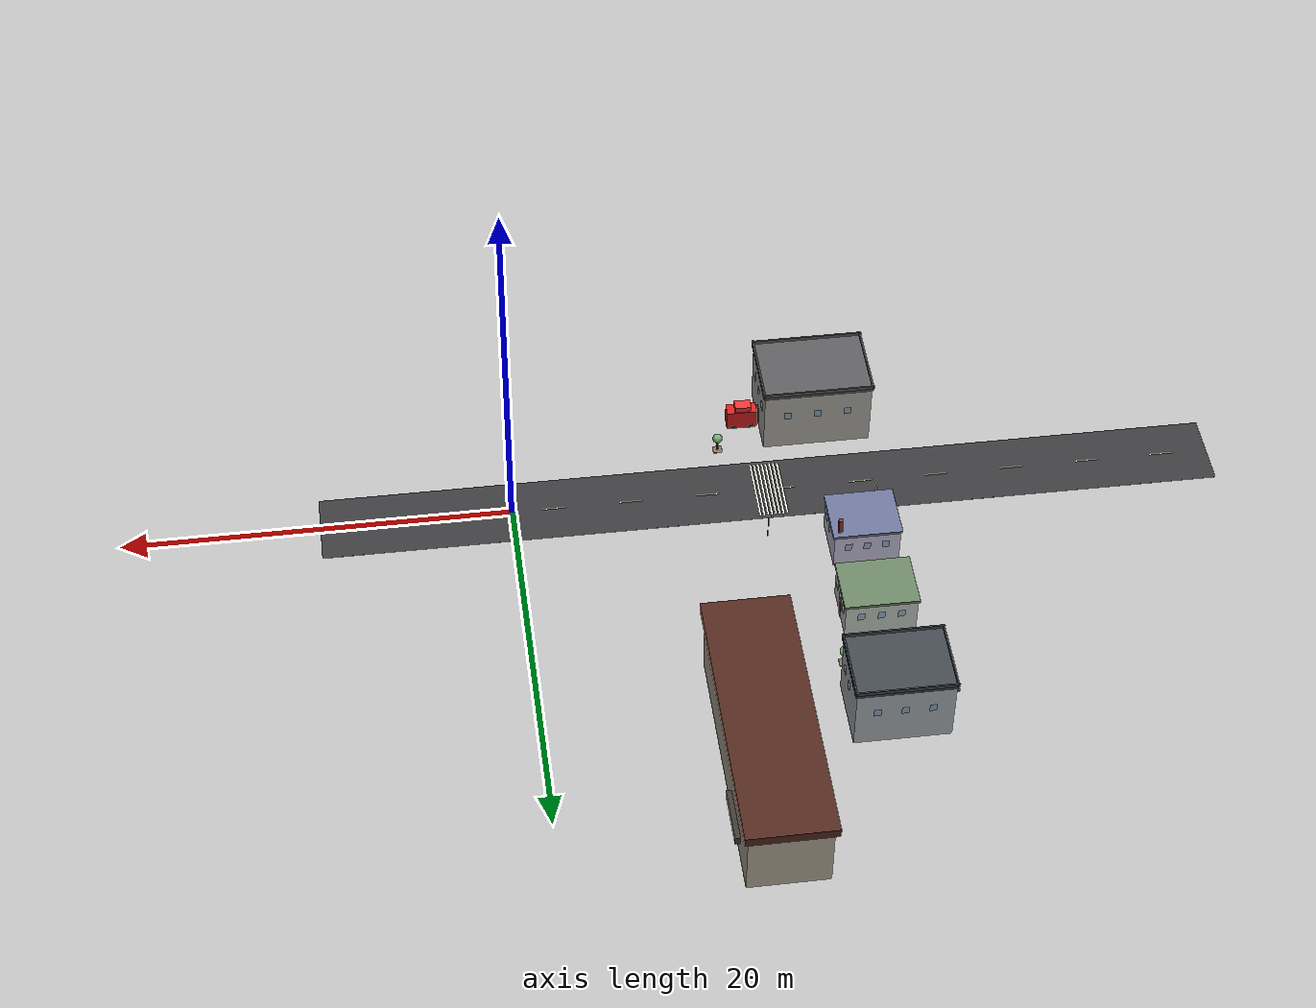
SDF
<sdf version="1.10">
 <world name="city">
  <model name="house_5">
   <static>true</static>
   <pose>-17.4449203491211 4.17096748352051 0 0 0 0</pose>
   <link name="link">
    <collision name="body_col">
     <pose>0 0 0.98 0 0 0</pose>
     <geometry><box><size>3.36 2.8 1.96</size></box></geometry>
    </collision>
    <visual name="body_vis">
     <pose>0 0 0.98 0 0 0</pose>
     <geometry><box><size>3.36 2.8 1.96</size></box></geometry>
     <material>
      <ambient>0.800000012 0.779999971 0.879999995 1</ambient>
      <diffuse>0.800000012 0.779999971 0.879999995 1</diffuse>
      <specular>0.0799999982 0.0799999982 0.0799999982 1</specular>
     </material>
    </visual>
    <collision name="roof_col">
     <pose>0 0 2.03 0 0 0</pose>
     <geometry><box><size>3.52 2.96 0.14</size></box></geometry>
    </collision>
    <visual name="roof_vis">
     <pose>0 0 2.03 0 0 0</pose>
     <geometry><box><size>3.52 2.96 0.14</size></box></geometry>
     <material>
      <ambient>0.419999987 0.460000008 0.600000024 1</ambient>
      <diffuse>0.419999987 0.460000008 0.600000024 1</diffuse>
      <specular>0.0799999982 0.0799999982 0.0799999982 1</specular>
     </material>
    </visual>
    <visual name="door_vis">
     <pose>0 -1.416 0.48 0 0 0</pose>
     <geometry><box><size>0.52 0.04 0.96</size></box></geometry>
     <material>
      <ambient>0.319999993 0.219999999 0.159999996 1</ambient>
      <diffuse>0.319999993 0.219999999 0.159999996 1</diffuse>
      <specular>0.0799999982 0.0799999982 0.0799999982 1</specular>
     </material>
    </visual>
    <visual name="win_south_0">
     <pose>-0.9408 -1.412 1.2152 0 0 0</pose>
     <geometry><box><size>0.34 0.032 0.4</size></box></geometry>
     <material>
      <ambient>0.550000012 0.720000029 0.879999995 0.550000012</ambient>
      <diffuse>0.550000012 0.720000029 0.879999995 0.550000012</diffuse>
      <specular>0.0799999982 0.0799999982 0.0799999982 1</specular>
      <transparency>0.35</transparency>
     </material>
    </visual>
    <visual name="win_south_1">
     <pose>0 -1.412 1.2152 0 0 0</pose>
     <geometry><box><size>0.34 0.032 0.4</size></box></geometry>
     <material>
      <ambient>0.550000012 0.720000029 0.879999995 0.550000012</ambient>
      <diffuse>0.550000012 0.720000029 0.879999995 0.550000012</diffuse>
      <specular>0.0799999982 0.0799999982 0.0799999982 1</specular>
      <transparency>0.35</transparency>
     </material>
    </visual>
    <visual name="win_south_2">
     <pose>0.9408 -1.412 1.2152 0 0 0</pose>
     <geometry><box><size>0.34 0.032 0.4</size></box></geometry>
     <material>
      <ambient>0.550000012 0.720000029 0.879999995 0.550000012</ambient>
      <diffuse>0.550000012 0.720000029 0.879999995 0.550000012</diffuse>
      <specular>0.0799999982 0.0799999982 0.0799999982 1</specular>
      <transparency>0.35</transparency>
     </material>
    </visual>
    <visual name="win_west_0">
     <pose>-1.692 -0.784 1.2152 0 0 0</pose>
     <geometry><box><size>0.032 0.34 0.4</size></box></geometry>
     <material>
      <ambient>0.550000012 0.720000029 0.879999995 0.550000012</ambient>
      <diffuse>0.550000012 0.720000029 0.879999995 0.550000012</diffuse>
      <specular>0.0799999982 0.0799999982 0.0799999982 1</specular>
      <transparency>0.35</transparency>
     </material>
    </visual>
    <visual name="win_west_1">
     <pose>-1.692 0 1.2152 0 0 0</pose>
     <geometry><box><size>0.032 0.34 0.4</size></box></geometry>
     <material>
      <ambient>0.550000012 0.720000029 0.879999995 0.550000012</ambient>
      <diffuse>0.550000012 0.720000029 0.879999995 0.550000012</diffuse>
      <specular>0.0799999982 0.0799999982 0.0799999982 1</specular>
      <transparency>0.35</transparency>
     </material>
    </visual>
    <visual name="win_east_0">
     <pose>1.692 -0.784 1.2152 0 0 0</pose>
     <geometry><box><size>0.032 0.34 0.4</size></box></geometry>
     <material>
      <ambient>0.550000012 0.720000029 0.879999995 0.550000012</ambient>
      <diffuse>0.550000012 0.720000029 0.879999995 0.550000012</diffuse>
      <specular>0.0799999982 0.0799999982 0.0799999982 1</specular>
      <transparency>0.35</transparency>
     </material>
    </visual>
    <visual name="win_east_1">
     <pose>1.692 0 1.2152 0 0 0</pose>
     <geometry><box><size>0.032 0.34 0.4</size></box></geometry>
     <material>
      <ambient>0.550000012 0.720000029 0.879999995 0.550000012</ambient>
      <diffuse>0.550000012 0.720000029 0.879999995 0.550000012</diffuse>
      <specular>0.0799999982 0.0799999982 0.0799999982 1</specular>
      <transparency>0.35</transparency>
     </material>
    </visual>
    <visual name="win_north_0">
     <pose>-0.9408 1.412 1.2152 0 0 0</pose>
     <geometry><box><size>0.34 0.032 0.4</size></box></geometry>
     <material>
      <ambient>0.550000012 0.720000029 0.879999995 0.550000012</ambient>
      <diffuse>0.550000012 0.720000029 0.879999995 0.550000012</diffuse>
      <specular>0.0799999982 0.0799999982 0.0799999982 1</specular>
      <transparency>0.35</transparency>
     </material>
    </visual>
    <visual name="win_north_1">
     <pose>0 1.412 1.2152 0 0 0</pose>
     <geometry><box><size>0.34 0.032 0.4</size></box></geometry>
     <material>
      <ambient>0.550000012 0.720000029 0.879999995 0.550000012</ambient>
      <diffuse>0.550000012 0.720000029 0.879999995 0.550000012</diffuse>
      <specular>0.0799999982 0.0799999982 0.0799999982 1</specular>
      <transparency>0.35</transparency>
     </material>
    </visual>
    <visual name="win_north_2">
     <pose>0.9408 1.412 1.2152 0 0 0</pose>
     <geometry><box><size>0.34 0.032 0.4</size></box></geometry>
     <material>
      <ambient>0.550000012 0.720000029 0.879999995 0.550000012</ambient>
      <diffuse>0.550000012 0.720000029 0.879999995 0.550000012</diffuse>
      <specular>0.0799999982 0.0799999982 0.0799999982 1</specular>
      <transparency>0.35</transparency>
     </material>
    </visual>
    <collision name="porch_col">
     <pose>0 -1.8 0.072 0 0 0</pose>
     <geometry><box><size>0.88 0.72 0.144</size></box></geometry>
    </collision>
    <visual name="porch_vis">
     <pose>0 -1.8 0.072 0 0 0</pose>
     <geometry><box><size>0.88 0.72 0.144</size></box></geometry>
     <material>
      <ambient>0.769999981 0.75999999 0.699999988 1</ambient>
      <diffuse>0.769999981 0.75999999 0.699999988 1</diffuse>
      <specular>0.0799999982 0.0799999982 0.0799999982 1</specular>
     </material>
    </visual>
    <visual name="chimney">
     <pose>1.36 1.08 2.44 0 0 0</pose>
     <geometry><box><size>0.2 0.2 0.96</size></box></geometry>
     <material>
      <ambient>0.550000012 0.219999999 0.180000007 1</ambient>
      <diffuse>0.550000012 0.219999999 0.180000007 1</diffuse>
      <specular>0.0799999982 0.0799999982 0.0799999982 1</specular>
     </material>
    </visual>
    <inertial>
     <mass>1</mass>
     <inertia><ixx>1</ixx><ixy>0</ixy><ixz>0</ixz><iyy>1</iyy><iyz>0</iyz><izz>1</izz></inertia>
    </inertial>
   </link>
  </model>
  <model name="clinic_annex">
   <static>true</static>
   <pose>-17.331510925293 8.8 0 0 0 0</pose>
   <link name="link">
    <collision name="body_col">
     <pose>0 0 0.96 0 0 0</pose>
     <geometry><box><size>3.6 2.8 1.92</size></box></geometry>
    </collision>
    <visual name="body_vis">
     <pose>0 0 0.96 0 0 0</pose>
     <geometry><box><size>3.6 2.8 1.92</size></box></geometry>
     <material>
      <ambient>0.779999971 0.819999993 0.779999971 1</ambient>
      <diffuse>0.779999971 0.819999993 0.779999971 1</diffuse>
      <specular>0.0799999982 0.0799999982 0.0799999982 1</specular>
     </material>
    </visual>
    <collision name="roof_col">
     <pose>0 0 1.99 0 0 0</pose>
     <geometry><box><size>3.76 2.96 0.14</size></box></geometry>
    </collision>
    <visual name="roof_vis">
     <pose>0 0 1.99 0 0 0</pose>
     <geometry><box><size>3.76 2.96 0.14</size></box></geometry>
     <material>
      <ambient>0.419999987 0.519999981 0.400000006 1</ambient>
      <diffuse>0.419999987 0.519999981 0.400000006 1</diffuse>
      <specular>0.0799999982 0.0799999982 0.0799999982 1</specular>
     </material>
    </visual>
    <visual name="door_vis">
     <pose>1.816 0 0.48 0 0 0</pose>
     <geometry><box><size>0.04 0.52 0.96</size></box></geometry>
     <material>
      <ambient>0.319999993 0.219999999 0.159999996 1</ambient>
      <diffuse>0.319999993 0.219999999 0.159999996 1</diffuse>
      <specular>0.0799999982 0.0799999982 0.0799999982 1</specular>
     </material>
    </visual>
    <visual name="win_east_0">
     <pose>1.812 -0.784 1.1904 0 0 0</pose>
     <geometry><box><size>0.032 0.34 0.4</size></box></geometry>
     <material>
      <ambient>0.550000012 0.720000029 0.879999995 0.550000012</ambient>
      <diffuse>0.550000012 0.720000029 0.879999995 0.550000012</diffuse>
      <specular>0.0799999982 0.0799999982 0.0799999982 1</specular>
      <transparency>0.35</transparency>
     </material>
    </visual>
    <visual name="win_east_1">
     <pose>1.812 0 1.1904 0 0 0</pose>
     <geometry><box><size>0.032 0.34 0.4</size></box></geometry>
     <material>
      <ambient>0.550000012 0.720000029 0.879999995 0.550000012</ambient>
      <diffuse>0.550000012 0.720000029 0.879999995 0.550000012</diffuse>
      <specular>0.0799999982 0.0799999982 0.0799999982 1</specular>
      <transparency>0.35</transparency>
     </material>
    </visual>
    <visual name="win_east_2">
     <pose>1.812 0.784 1.1904 0 0 0</pose>
     <geometry><box><size>0.032 0.34 0.4</size></box></geometry>
     <material>
      <ambient>0.550000012 0.720000029 0.879999995 0.550000012</ambient>
      <diffuse>0.550000012 0.720000029 0.879999995 0.550000012</diffuse>
      <specular>0.0799999982 0.0799999982 0.0799999982 1</specular>
      <transparency>0.35</transparency>
     </material>
    </visual>
    <visual name="win_south_0">
     <pose>-1.008 -1.412 1.1904 0 0 0</pose>
     <geometry><box><size>0.34 0.032 0.4</size></box></geometry>
     <material>
      <ambient>0.550000012 0.720000029 0.879999995 0.550000012</ambient>
      <diffuse>0.550000012 0.720000029 0.879999995 0.550000012</diffuse>
      <specular>0.0799999982 0.0799999982 0.0799999982 1</specular>
      <transparency>0.35</transparency>
     </material>
    </visual>
    <visual name="win_south_1">
     <pose>0 -1.412 1.1904 0 0 0</pose>
     <geometry><box><size>0.34 0.032 0.4</size></box></geometry>
     <material>
      <ambient>0.550000012 0.720000029 0.879999995 0.550000012</ambient>
      <diffuse>0.550000012 0.720000029 0.879999995 0.550000012</diffuse>
      <specular>0.0799999982 0.0799999982 0.0799999982 1</specular>
      <transparency>0.35</transparency>
     </material>
    </visual>
    <visual name="win_south_2">
     <pose>1.008 -1.412 1.1904 0 0 0</pose>
     <geometry><box><size>0.34 0.032 0.4</size></box></geometry>
     <material>
      <ambient>0.550000012 0.720000029 0.879999995 0.550000012</ambient>
      <diffuse>0.550000012 0.720000029 0.879999995 0.550000012</diffuse>
      <specular>0.0799999982 0.0799999982 0.0799999982 1</specular>
      <transparency>0.35</transparency>
     </material>
    </visual>
    <visual name="win_west_0">
     <pose>-1.812 -0.784 1.1904 0 0 0</pose>
     <geometry><box><size>0.032 0.34 0.4</size></box></geometry>
     <material>
      <ambient>0.550000012 0.720000029 0.879999995 0.550000012</ambient>
      <diffuse>0.550000012 0.720000029 0.879999995 0.550000012</diffuse>
      <specular>0.0799999982 0.0799999982 0.0799999982 1</specular>
      <transparency>0.35</transparency>
     </material>
    </visual>
    <visual name="win_west_1">
     <pose>-1.812 0 1.1904 0 0 0</pose>
     <geometry><box><size>0.032 0.34 0.4</size></box></geometry>
     <material>
      <ambient>0.550000012 0.720000029 0.879999995 0.550000012</ambient>
      <diffuse>0.550000012 0.720000029 0.879999995 0.550000012</diffuse>
      <specular>0.0799999982 0.0799999982 0.0799999982 1</specular>
      <transparency>0.35</transparency>
     </material>
    </visual>
    <visual name="win_north_0">
     <pose>-1.008 1.412 1.1904 0 0 0</pose>
     <geometry><box><size>0.34 0.032 0.4</size></box></geometry>
     <material>
      <ambient>0.550000012 0.720000029 0.879999995 0.550000012</ambient>
      <diffuse>0.550000012 0.720000029 0.879999995 0.550000012</diffuse>
      <specular>0.0799999982 0.0799999982 0.0799999982 1</specular>
      <transparency>0.35</transparency>
     </material>
    </visual>
    <visual name="win_north_1">
     <pose>0 1.412 1.1904 0 0 0</pose>
     <geometry><box><size>0.34 0.032 0.4</size></box></geometry>
     <material>
      <ambient>0.550000012 0.720000029 0.879999995 0.550000012</ambient>
      <diffuse>0.550000012 0.720000029 0.879999995 0.550000012</diffuse>
      <specular>0.0799999982 0.0799999982 0.0799999982 1</specular>
      <transparency>0.35</transparency>
     </material>
    </visual>
    <visual name="win_north_2">
     <pose>1.008 1.412 1.1904 0 0 0</pose>
     <geometry><box><size>0.34 0.032 0.4</size></box></geometry>
     <material>
      <ambient>0.550000012 0.720000029 0.879999995 0.550000012</ambient>
      <diffuse>0.550000012 0.720000029 0.879999995 0.550000012</diffuse>
      <specular>0.0799999982 0.0799999982 0.0799999982 1</specular>
      <transparency>0.35</transparency>
     </material>
    </visual>
    <inertial>
     <mass>1</mass>
     <inertia><ixx>1</ixx><ixy>0</ixy><ixz>0</ixz><iyy>1</iyy><iyz>0</iyz><izz>1</izz></inertia>
    </inertial>
   </link>
  </model>
  <model name="tree_11">
   <static>true</static>
   <pose>-15.2 12 0 0 0 0</pose>
   <link name="link">
    <collision name="soil_col">
     <pose>0 0 0.012 0 0 0</pose>
     <geometry><box><size>0.48 0.48 0.024</size></box></geometry>
    </collision>
    <visual name="soil_vis">
     <pose>0 0 0.012 0 0 0</pose>
     <geometry><box><size>0.48 0.48 0.024</size></box></geometry>
     <material>
      <ambient>0.5 0.439999998 0.349999994 1</ambient>
      <diffuse>0.5 0.439999998 0.349999994 1</diffuse>
      <specular>0.0799999982 0.0799999982 0.0799999982 1</specular>
     </material>
    </visual>
    <collision name="trunk_col">
     <pose>0 0 0.36 0 0 0</pose>
     <geometry><cylinder><radius>0.04</radius><length>0.72</length></cylinder></geometry>
    </collision>
    <visual name="trunk_vis">
     <pose>0 0 0.36 0 0 0</pose>
     <geometry><cylinder><radius>0.04</radius><length>0.72</length></cylinder></geometry>
     <material>
      <ambient>0.449999988 0.310000002 0.180000007 1</ambient>
      <diffuse>0.449999988 0.310000002 0.180000007 1</diffuse>
      <specular>0.0799999982 0.0799999982 0.0799999982 1</specular>
     </material>
    </visual>
    <visual name="crown_vis">
     <pose>0 0 0.84 0 0 0</pose>
     <geometry><sphere><radius>0.248</radius></sphere></geometry>
     <material>
      <ambient>0.449999988 0.680000007 0.439999998 1</ambient>
      <diffuse>0.449999988 0.680000007 0.439999998 1</diffuse>
      <specular>0.0799999982 0.0799999982 0.0799999982 1</specular>
     </material>
    </visual>
    <inertial>
     <mass>1</mass>
     <inertia><ixx>1</ixx><ixy>0</ixy><ixz>0</ixz><iyy>1</iyy><iyz>0</iyz><izz>1</izz></inertia>
    </inertial>
   </link>
  </model>
  <model name="lamp_12">
   <static>true</static>
   <pose>-12.8 3.2 0 0 0 0</pose>
   <link name="link">
    <collision name="pole_col">
     <pose>0 0 0.68 0 0 0</pose>
     <geometry><cylinder><radius>0.02</radius><length>1.36</length></cylinder></geometry>
    </collision>
    <visual name="pole_vis">
     <pose>0 0 0.68 0 0 0</pose>
     <geometry><cylinder><radius>0.02</radius><length>1.36</length></cylinder></geometry>
     <material>
      <ambient>0.25 0.25 0.270000011 1</ambient>
      <diffuse>0.25 0.25 0.270000011 1</diffuse>
      <specular>0.0799999982 0.0799999982 0.0799999982 1</specular>
     </material>
    </visual>
    <visual name="head_vis">
     <pose>0 0 1.408 0 0 0</pose>
     <geometry><box><size>0.2 0.072 0.04</size></box></geometry>
     <material>
      <ambient>0.920000017 0.910000026 0.779999971 1</ambient>
      <diffuse>0.920000017 0.910000026 0.779999971 1</diffuse>
      <specular>0.0799999982 0.0799999982 0.0799999982 1</specular>
     </material>
    </visual>
    <inertial>
     <mass>1</mass>
     <inertia><ixx>1</ixx><ixy>0</ixy><ixz>0</ixz><iyy>1</iyy><iyz>0</iyz><izz>1</izz></inertia>
    </inertial>
   </link>
  </model>
  <model name="house_5_qr_sign">
   <static>true</static>
   <pose>-18.5531799316406 2.06948509216309 0 0 0 1.57080003571763</pose>
   <link name="link">
    <collision name="post_col">
     <pose>0 0 0.5 0 0 0</pose>
     <geometry><box><size>0.056 0.056 1</size></box></geometry>
    </collision>
    <visual name="post_vis">
     <pose>0 0 0.5 0 0 0</pose>
     <geometry><box><size>0.056 0.056 1</size></box></geometry>
     <material>
      <ambient>0.239999995 0.239999995 0.239999995 1</ambient>
      <diffuse>0.239999995 0.239999995 0.239999995 1</diffuse>
      <specular>0.0799999982 0.0799999982 0.0799999982 1</specular>
     </material>
    </visual>
    <collision name="base_col">
     <pose>0 0 0.024 0 0 0</pose>
     <geometry><box><size>0.3 0.3 0.048</size></box></geometry>
    </collision>
    <visual name="base_vis">
     <pose>0 0 0.024 0 0 0</pose>
     <geometry><box><size>0.3 0.3 0.048</size></box></geometry>
     <material>
      <ambient>0.379999995 0.379999995 0.379999995 1</ambient>
      <diffuse>0.379999995 0.379999995 0.379999995 1</diffuse>
      <specular>0.0799999982 0.0799999982 0.0799999982 1</specular>
     </material>
    </visual>
    <visual name="back_vis">
     <pose>0 0 0.48 0 0 0</pose>
     <geometry><box><size>0.86 0.024 0.072</size></box></geometry>
     <material>
      <ambient>0.920000017 0.920000017 0.920000017 1</ambient>
      <diffuse>0.920000017 0.920000017 0.920000017 1</diffuse>
      <specular>0.0500000007 0.0500000007 0.0500000007 1</specular>
     </material>
    </visual>
    <visual name="qr_vis">
     <pose>0 0 1.02 0 0 0</pose>
     <geometry><box><size>0.8 0.04 0.8</size></box></geometry>
     <material>
      <ambient>1 1 1 1</ambient>
      <diffuse>1 1 1 1</diffuse>
      <specular>0.0500000007 0.0500000007 0.0500000007 1</specular>
      <pbr><metal><metalness>0.0</metalness><roughness>1.0</roughness></metal></pbr>
     </material>
    </visual>
    <inertial>
     <mass>1</mass>
     <inertia><ixx>1</ixx><ixy>0</ixy><ixz>0</ixz><iyy>1</iyy><iyz>0</iyz><izz>1</izz></inertia>
    </inertial>
   </link>
  </model>
  <model name="road_central_eastwest_1">
   <static>true</static>
   <pose>-13.3517976103872 -0.0281964020955726 0 0 0 0</pose>
   <link name="link">
    <collision name="road_col">
     <pose>0 0 0.004 0 0 0</pose>
     <geometry><box><size>46.4 4 0.008</size></box></geometry>
    </collision>
    <visual name="road_vis">
     <pose>0 0 0.004 0 0 0</pose>
     <geometry><box><size>46.4 4 0.008</size></box></geometry>
     <material>
      <ambient>0.230000004 0.230000004 0.239999995 1</ambient>
      <diffuse>0.230000004 0.230000004 0.239999995 1</diffuse>
      <specular>0.0799999982 0.0799999982 0.0799999982 1</specular>
     </material>
    </visual>
    <visual name="dash0_vis">
     <pose>-20.8 0 0.0088 0 0 0</pose>
     <geometry><box><size>1.2 0.072 0.004</size></box></geometry>
     <material>
      <ambient>0.959999979 0.939999998 0.829999983 1</ambient>
      <diffuse>0.959999979 0.939999998 0.829999983 1</diffuse>
      <specular>0.0799999982 0.0799999982 0.0799999982 1</specular>
     </material>
    </visual>
    <visual name="dash1_vis">
     <pose>-16.8 0 0.0088 0 0 0</pose>
     <geometry><box><size>1.2 0.072 0.004</size></box></geometry>
     <material>
      <ambient>0.959999979 0.939999998 0.829999983 1</ambient>
      <diffuse>0.959999979 0.939999998 0.829999983 1</diffuse>
      <specular>0.0799999982 0.0799999982 0.0799999982 1</specular>
     </material>
    </visual>
    <visual name="dash2_vis">
     <pose>-12.8 0 0.0088 0 0 0</pose>
     <geometry><box><size>1.2 0.072 0.004</size></box></geometry>
     <material>
      <ambient>0.959999979 0.939999998 0.829999983 1</ambient>
      <diffuse>0.959999979 0.939999998 0.829999983 1</diffuse>
      <specular>0.0799999982 0.0799999982 0.0799999982 1</specular>
     </material>
    </visual>
    <visual name="dash3_vis">
     <pose>-8.8 0 0.0088 0 0 0</pose>
     <geometry><box><size>1.2 0.072 0.004</size></box></geometry>
     <material>
      <ambient>0.959999979 0.939999998 0.829999983 1</ambient>
      <diffuse>0.959999979 0.939999998 0.829999983 1</diffuse>
      <specular>0.0799999982 0.0799999982 0.0799999982 1</specular>
     </material>
    </visual>
    <visual name="dash4_vis">
     <pose>-4.8 0 0.0088 0 0 0</pose>
     <geometry><box><size>1.2 0.072 0.004</size></box></geometry>
     <material>
      <ambient>0.959999979 0.939999998 0.829999983 1</ambient>
      <diffuse>0.959999979 0.939999998 0.829999983 1</diffuse>
      <specular>0.0799999982 0.0799999982 0.0799999982 1</specular>
     </material>
    </visual>
    <visual name="dash5_vis">
     <pose>-0.8 0 0.0088 0 0 0</pose>
     <geometry><box><size>1.2 0.072 0.004</size></box></geometry>
     <material>
      <ambient>0.959999979 0.939999998 0.829999983 1</ambient>
      <diffuse>0.959999979 0.939999998 0.829999983 1</diffuse>
      <specular>0.0799999982 0.0799999982 0.0799999982 1</specular>
     </material>
    </visual>
    <visual name="dash6_vis">
     <pose>3.2 0 0.0088 0 0 0</pose>
     <geometry><box><size>1.2 0.072 0.004</size></box></geometry>
     <material>
      <ambient>0.959999979 0.939999998 0.829999983 1</ambient>
      <diffuse>0.959999979 0.939999998 0.829999983 1</diffuse>
      <specular>0.0799999982 0.0799999982 0.0799999982 1</specular>
     </material>
    </visual>
    <visual name="dash7_vis">
     <pose>7.2 0 0.0088 0 0 0</pose>
     <geometry><box><size>1.2 0.072 0.004</size></box></geometry>
     <material>
      <ambient>0.959999979 0.939999998 0.829999983 1</ambient>
      <diffuse>0.959999979 0.939999998 0.829999983 1</diffuse>
      <specular>0.0799999982 0.0799999982 0.0799999982 1</specular>
     </material>
    </visual>
    <visual name="dash8_vis">
     <pose>11.2 0 0.0088 0 0 0</pose>
     <geometry><box><size>1.2 0.072 0.004</size></box></geometry>
     <material>
      <ambient>0.959999979 0.939999998 0.829999983 1</ambient>
      <diffuse>0.959999979 0.939999998 0.829999983 1</diffuse>
      <specular>0.0799999982 0.0799999982 0.0799999982 1</specular>
     </material>
    </visual>
    <visual name="dash9_vis">
     <pose>15.2 0 0.0088 0 0 0</pose>
     <geometry><box><size>1.2 0.072 0.004</size></box></geometry>
     <material>
      <ambient>0.959999979 0.939999998 0.829999983 1</ambient>
      <diffuse>0.959999979 0.939999998 0.829999983 1</diffuse>
      <specular>0.0799999982 0.0799999982 0.0799999982 1</specular>
     </material>
    </visual>
    <visual name="dash10_vis">
     <pose>19.2 0 0.0088 0 0 0</pose>
     <geometry><box><size>1.2 0.072 0.004</size></box></geometry>
     <material>
      <ambient>0.959999979 0.939999998 0.829999983 1</ambient>
      <diffuse>0.959999979 0.939999998 0.829999983 1</diffuse>
      <specular>0.0799999982 0.0799999982 0.0799999982 1</specular>
     </material>
    </visual>
    <visual name="cw0_vis">
     <pose>-0.7 0 0.0088 0 0 0</pose>
     <geometry><box><size>0.112 3.64 0.0048</size></box></geometry>
     <material>
      <ambient>0.959999979 0.959999979 0.920000017 1</ambient>
      <diffuse>0.959999979 0.959999979 0.920000017 1</diffuse>
      <specular>0.0799999982 0.0799999982 0.0799999982 1</specular>
     </material>
    </visual>
    <visual name="cw1_vis">
     <pose>-0.5 0 0.0088 0 0 0</pose>
     <geometry><box><size>0.112 3.64 0.0048</size></box></geometry>
     <material>
      <ambient>0.959999979 0.959999979 0.920000017 1</ambient>
      <diffuse>0.959999979 0.959999979 0.920000017 1</diffuse>
      <specular>0.0799999982 0.0799999982 0.0799999982 1</specular>
     </material>
    </visual>
    <visual name="cw2_vis">
     <pose>-0.3 0 0.0088 0 0 0</pose>
     <geometry><box><size>0.112 3.64 0.0048</size></box></geometry>
     <material>
      <ambient>0.959999979 0.959999979 0.920000017 1</ambient>
      <diffuse>0.959999979 0.959999979 0.920000017 1</diffuse>
      <specular>0.0799999982 0.0799999982 0.0799999982 1</specular>
     </material>
    </visual>
    <visual name="cw3_vis">
     <pose>-0.1 0 0.0088 0 0 0</pose>
     <geometry><box><size>0.112 3.64 0.0048</size></box></geometry>
     <material>
      <ambient>0.959999979 0.959999979 0.920000017 1</ambient>
      <diffuse>0.959999979 0.959999979 0.920000017 1</diffuse>
      <specular>0.0799999982 0.0799999982 0.0799999982 1</specular>
     </material>
    </visual>
    <visual name="cw4_vis">
     <pose>0.1 0 0.0088 0 0 0</pose>
     <geometry><box><size>0.112 3.64 0.0048</size></box></geometry>
     <material>
      <ambient>0.959999979 0.959999979 0.920000017 1</ambient>
      <diffuse>0.959999979 0.959999979 0.920000017 1</diffuse>
      <specular>0.0799999982 0.0799999982 0.0799999982 1</specular>
     </material>
    </visual>
    <visual name="cw5_vis">
     <pose>0.3 0 0.0088 0 0 0</pose>
     <geometry><box><size>0.112 3.64 0.0048</size></box></geometry>
     <material>
      <ambient>0.959999979 0.959999979 0.920000017 1</ambient>
      <diffuse>0.959999979 0.959999979 0.920000017 1</diffuse>
      <specular>0.0799999982 0.0799999982 0.0799999982 1</specular>
     </material>
    </visual>
    <visual name="cw6_vis">
     <pose>0.5 0 0.0088 0 0 0</pose>
     <geometry><box><size>0.112 3.64 0.0048</size></box></geometry>
     <material>
      <ambient>0.959999979 0.959999979 0.920000017 1</ambient>
      <diffuse>0.959999979 0.959999979 0.920000017 1</diffuse>
      <specular>0.0799999982 0.0799999982 0.0799999982 1</specular>
     </material>
    </visual>
    <visual name="cw7_vis">
     <pose>0.7 0 0.0088 0 0 0</pose>
     <geometry><box><size>0.112 3.64 0.0048</size></box></geometry>
     <material>
      <ambient>0.959999979 0.959999979 0.920000017 1</ambient>
      <diffuse>0.959999979 0.959999979 0.920000017 1</diffuse>
      <specular>0.0799999982 0.0799999982 0.0799999982 1</specular>
     </material>
    </visual>
    <inertial>
     <mass>1</mass>
     <inertia><ixx>1</ixx><ixy>0</ixy><ixz>0</ixz><iyy>1</iyy><iyz>0</iyz><izz>1</izz></inertia>
    </inertial>
   </link>
  </model>
  <model name="apartment_west_1">
   <static>true</static>
   <pose>-16.328874206543 -5.0834400177002 0 0 0 0</pose>
   <link name="link">
    <collision name="body_col">
     <pose>0 0 1.76 0 0 0</pose>
     <geometry><box><size>5.6 4 3.52</size></box></geometry>
    </collision>
    <visual name="body_vis">
     <pose>0 0 1.76 0 0 0</pose>
     <geometry><box><size>5.6 4 3.52</size></box></geometry>
     <material>
      <ambient>0.699999988 0.689999998 0.660000026 1</ambient>
      <diffuse>0.699999988 0.689999998 0.660000026 1</diffuse>
      <specular>0.0799999982 0.0799999982 0.0799999982 1</specular>
     </material>
    </visual>
    <collision name="roof_col">
     <pose>0 0 3.59 0 0 0</pose>
     <geometry><box><size>5.76 4.16 0.14</size></box></geometry>
    </collision>
    <visual name="roof_vis">
     <pose>0 0 3.59 0 0 0</pose>
     <geometry><box><size>5.76 4.16 0.14</size></box></geometry>
     <material>
      <ambient>0.360000014 0.360000014 0.370000005 1</ambient>
      <diffuse>0.360000014 0.360000014 0.370000005 1</diffuse>
      <specular>0.0799999982 0.0799999982 0.0799999982 1</specular>
     </material>
    </visual>
    <visual name="p1_vis">
     <pose>0 2.036 3.748 0 0 0</pose>
     <geometry><box><size>5.82 0.072 0.18</size></box></geometry>
     <material>
      <ambient>0.360000014 0.360000014 0.370000005 1</ambient>
      <diffuse>0.360000014 0.360000014 0.370000005 1</diffuse>
      <specular>0.0799999982 0.0799999982 0.0799999982 1</specular>
     </material>
    </visual>
    <visual name="p2_vis">
     <pose>0 -2.036 3.748 0 0 0</pose>
     <geometry><box><size>5.82 0.072 0.18</size></box></geometry>
     <material>
      <ambient>0.360000014 0.360000014 0.370000005 1</ambient>
      <diffuse>0.360000014 0.360000014 0.370000005 1</diffuse>
      <specular>0.0799999982 0.0799999982 0.0799999982 1</specular>
     </material>
    </visual>
    <visual name="p3_vis">
     <pose>2.836 0 3.748 0 0 0</pose>
     <geometry><box><size>0.072 4.22 0.18</size></box></geometry>
     <material>
      <ambient>0.360000014 0.360000014 0.370000005 1</ambient>
      <diffuse>0.360000014 0.360000014 0.370000005 1</diffuse>
      <specular>0.0799999982 0.0799999982 0.0799999982 1</specular>
     </material>
    </visual>
    <visual name="p4_vis">
     <pose>-2.836 0 3.748 0 0 0</pose>
     <geometry><box><size>0.072 4.22 0.18</size></box></geometry>
     <material>
      <ambient>0.360000014 0.360000014 0.370000005 1</ambient>
      <diffuse>0.360000014 0.360000014 0.370000005 1</diffuse>
      <specular>0.0799999982 0.0799999982 0.0799999982 1</specular>
     </material>
    </visual>
    <visual name="door_vis">
     <pose>2.816 0 0.48 0 0 0</pose>
     <geometry><box><size>0.04 0.52 0.96</size></box></geometry>
     <material>
      <ambient>0.319999993 0.219999999 0.159999996 1</ambient>
      <diffuse>0.319999993 0.219999999 0.159999996 1</diffuse>
      <specular>0.0799999982 0.0799999982 0.0799999982 1</specular>
     </material>
    </visual>
    <visual name="win_east_0">
     <pose>2.812 -1.12 2.1824 0 0 0</pose>
     <geometry><box><size>0.032 0.34 0.4</size></box></geometry>
     <material>
      <ambient>0.550000012 0.720000029 0.879999995 0.550000012</ambient>
      <diffuse>0.550000012 0.720000029 0.879999995 0.550000012</diffuse>
      <specular>0.0799999982 0.0799999982 0.0799999982 1</specular>
      <transparency>0.35</transparency>
     </material>
    </visual>
    <visual name="win_east_1">
     <pose>2.812 0 2.1824 0 0 0</pose>
     <geometry><box><size>0.032 0.34 0.4</size></box></geometry>
     <material>
      <ambient>0.550000012 0.720000029 0.879999995 0.550000012</ambient>
      <diffuse>0.550000012 0.720000029 0.879999995 0.550000012</diffuse>
      <specular>0.0799999982 0.0799999982 0.0799999982 1</specular>
      <transparency>0.35</transparency>
     </material>
    </visual>
    <visual name="win_east_2">
     <pose>2.812 1.12 2.1824 0 0 0</pose>
     <geometry><box><size>0.032 0.34 0.4</size></box></geometry>
     <material>
      <ambient>0.550000012 0.720000029 0.879999995 0.550000012</ambient>
      <diffuse>0.550000012 0.720000029 0.879999995 0.550000012</diffuse>
      <specular>0.0799999982 0.0799999982 0.0799999982 1</specular>
      <transparency>0.35</transparency>
     </material>
    </visual>
    <visual name="win_south_0">
     <pose>-1.568 -2.012 2.1824 0 0 0</pose>
     <geometry><box><size>0.34 0.032 0.4</size></box></geometry>
     <material>
      <ambient>0.550000012 0.720000029 0.879999995 0.550000012</ambient>
      <diffuse>0.550000012 0.720000029 0.879999995 0.550000012</diffuse>
      <specular>0.0799999982 0.0799999982 0.0799999982 1</specular>
      <transparency>0.35</transparency>
     </material>
    </visual>
    <visual name="win_south_1">
     <pose>0 -2.012 2.1824 0 0 0</pose>
     <geometry><box><size>0.34 0.032 0.4</size></box></geometry>
     <material>
      <ambient>0.550000012 0.720000029 0.879999995 0.550000012</ambient>
      <diffuse>0.550000012 0.720000029 0.879999995 0.550000012</diffuse>
      <specular>0.0799999982 0.0799999982 0.0799999982 1</specular>
      <transparency>0.35</transparency>
     </material>
    </visual>
    <visual name="win_south_2">
     <pose>1.568 -2.012 2.1824 0 0 0</pose>
     <geometry><box><size>0.34 0.032 0.4</size></box></geometry>
     <material>
      <ambient>0.550000012 0.720000029 0.879999995 0.550000012</ambient>
      <diffuse>0.550000012 0.720000029 0.879999995 0.550000012</diffuse>
      <specular>0.0799999982 0.0799999982 0.0799999982 1</specular>
      <transparency>0.35</transparency>
     </material>
    </visual>
    <visual name="win_west_0">
     <pose>-2.812 -1.12 2.1824 0 0 0</pose>
     <geometry><box><size>0.032 0.34 0.4</size></box></geometry>
     <material>
      <ambient>0.550000012 0.720000029 0.879999995 0.550000012</ambient>
      <diffuse>0.550000012 0.720000029 0.879999995 0.550000012</diffuse>
      <specular>0.0799999982 0.0799999982 0.0799999982 1</specular>
      <transparency>0.35</transparency>
     </material>
    </visual>
    <visual name="win_west_1">
     <pose>-2.812 0 2.1824 0 0 0</pose>
     <geometry><box><size>0.032 0.34 0.4</size></box></geometry>
     <material>
      <ambient>0.550000012 0.720000029 0.879999995 0.550000012</ambient>
      <diffuse>0.550000012 0.720000029 0.879999995 0.550000012</diffuse>
      <specular>0.0799999982 0.0799999982 0.0799999982 1</specular>
      <transparency>0.35</transparency>
     </material>
    </visual>
    <visual name="win_north_0">
     <pose>-1.568 2.012 2.1824 0 0 0</pose>
     <geometry><box><size>0.34 0.032 0.4</size></box></geometry>
     <material>
      <ambient>0.550000012 0.720000029 0.879999995 0.550000012</ambient>
      <diffuse>0.550000012 0.720000029 0.879999995 0.550000012</diffuse>
      <specular>0.0799999982 0.0799999982 0.0799999982 1</specular>
      <transparency>0.35</transparency>
     </material>
    </visual>
    <visual name="win_north_1">
     <pose>0 2.012 2.1824 0 0 0</pose>
     <geometry><box><size>0.34 0.032 0.4</size></box></geometry>
     <material>
      <ambient>0.550000012 0.720000029 0.879999995 0.550000012</ambient>
      <diffuse>0.550000012 0.720000029 0.879999995 0.550000012</diffuse>
      <specular>0.0799999982 0.0799999982 0.0799999982 1</specular>
      <transparency>0.35</transparency>
     </material>
    </visual>
    <visual name="win_north_2">
     <pose>1.568 2.012 2.1824 0 0 0</pose>
     <geometry><box><size>0.34 0.032 0.4</size></box></geometry>
     <material>
      <ambient>0.550000012 0.720000029 0.879999995 0.550000012</ambient>
      <diffuse>0.550000012 0.720000029 0.879999995 0.550000012</diffuse>
      <specular>0.0799999982 0.0799999982 0.0799999982 1</specular>
      <transparency>0.35</transparency>
     </material>
    </visual>
    <inertial>
     <mass>1</mass>
     <inertia><ixx>1</ixx><ixy>0</ixy><ixz>0</ixz><iyy>1</iyy><iyz>0</iyz><izz>1</izz></inertia>
    </inertial>
   </link>
  </model>
  <model name="gallery_long_residential_block_2_1">
   <static>true</static>
   <pose>-10.3844604492188 17.9529388427734 0 0 0 -1.56696998067439</pose>
   <link name="body">
    <collision name="collision">
     <pose>0 0 1.8 0 0 0</pose>
     <geometry><box><size>13.6 4 3.6</size></box></geometry>
    </collision>
    <visual name="main">
     <pose>0 0 1.8 0 0 0</pose>
     <geometry><box><size>13.6 4 3.6</size></box></geometry>
     <material>
      <ambient>0.720000029 0.680000007 0.610000014 1</ambient>
      <diffuse>0.720000029 0.680000007 0.610000014 1</diffuse>
      <specular>0.0799999982 0.0799999982 0.0799999982 1</specular>
     </material>
    </visual>
    <visual name="roof">
     <pose>0 0 3.84 0 0 0</pose>
     <geometry><box><size>14.2 4.4 0.48</size></box></geometry>
     <material>
      <ambient>0.319999993 0.159999996 0.119999997 1</ambient>
      <diffuse>0.319999993 0.159999996 0.119999997 1</diffuse>
      <specular>0.0500000007 0.0500000007 0.0500000007 1</specular>
     </material>
    </visual>
    <visual name="canopy">
     <pose>-3.6 2.12 1.16 0 0 0</pose>
     <geometry><box><size>2.8 0.28 0.44</size></box></geometry>
     <material>
      <ambient>0.239999995 0.219999999 0.200000003 1</ambient>
      <diffuse>0.239999995 0.219999999 0.200000003 1</diffuse>
      <specular>0.0299999993 0.0299999993 0.0299999993 1</specular>
     </material>
    </visual>
    <inertial>
     <mass>1</mass>
     <inertia><ixx>1</ixx><ixy>0</ixy><ixz>0</ixz><iyy>1</iyy><iyz>0</iyz><izz>1</izz></inertia>
    </inertial>
   </link>
  </model>
  <model name="office_east_2_3">
   <static>true</static>
   <pose>-17.1767668396393 15.220302034477 0 0 0 0</pose>
   <link name="link">
    <collision name="body_col">
     <pose>0 0 1.72 0 0 0</pose>
     <geometry><box><size>4.8 3.6 3.44</size></box></geometry>
    </collision>
    <visual name="body_vis">
     <pose>0 0 1.72 0 0 0</pose>
     <geometry><box><size>4.8 3.6 3.44</size></box></geometry>
     <material>
      <ambient>0.689999998 0.709999979 0.730000019 1</ambient>
      <diffuse>0.689999998 0.709999979 0.730000019 1</diffuse>
      <specular>0.0799999982 0.0799999982 0.0799999982 1</specular>
     </material>
    </visual>
    <collision name="roof_col">
     <pose>0 0 3.51 0 0 0</pose>
     <geometry><box><size>4.96 3.76 0.14</size></box></geometry>
    </collision>
    <visual name="roof_vis">
     <pose>0 0 3.51 0 0 0</pose>
     <geometry><box><size>4.96 3.76 0.14</size></box></geometry>
     <material>
      <ambient>0.25999999 0.280000001 0.310000002 1</ambient>
      <diffuse>0.25999999 0.280000001 0.310000002 1</diffuse>
      <specular>0.0799999982 0.0799999982 0.0799999982 1</specular>
     </material>
    </visual>
    <visual name="p1_vis">
     <pose>0 1.836 3.668 0 0 0</pose>
     <geometry><box><size>5.02 0.072 0.18</size></box></geometry>
     <material>
      <ambient>0.25999999 0.280000001 0.310000002 1</ambient>
      <diffuse>0.25999999 0.280000001 0.310000002 1</diffuse>
      <specular>0.0799999982 0.0799999982 0.0799999982 1</specular>
     </material>
    </visual>
    <visual name="p2_vis">
     <pose>0 -1.836 3.668 0 0 0</pose>
     <geometry><box><size>5.02 0.072 0.18</size></box></geometry>
     <material>
      <ambient>0.25999999 0.280000001 0.310000002 1</ambient>
      <diffuse>0.25999999 0.280000001 0.310000002 1</diffuse>
      <specular>0.0799999982 0.0799999982 0.0799999982 1</specular>
     </material>
    </visual>
    <visual name="p3_vis">
     <pose>2.436 0 3.668 0 0 0</pose>
     <geometry><box><size>0.072 3.82 0.18</size></box></geometry>
     <material>
      <ambient>0.25999999 0.280000001 0.310000002 1</ambient>
      <diffuse>0.25999999 0.280000001 0.310000002 1</diffuse>
      <specular>0.0799999982 0.0799999982 0.0799999982 1</specular>
     </material>
    </visual>
    <visual name="p4_vis">
     <pose>-2.436 0 3.668 0 0 0</pose>
     <geometry><box><size>0.072 3.82 0.18</size></box></geometry>
     <material>
      <ambient>0.25999999 0.280000001 0.310000002 1</ambient>
      <diffuse>0.25999999 0.280000001 0.310000002 1</diffuse>
      <specular>0.0799999982 0.0799999982 0.0799999982 1</specular>
     </material>
    </visual>
    <visual name="door_vis">
     <pose>-2.416 0 0.48 0 0 0</pose>
     <geometry><box><size>0.04 0.52 0.96</size></box></geometry>
     <material>
      <ambient>0.319999993 0.219999999 0.159999996 1</ambient>
      <diffuse>0.319999993 0.219999999 0.159999996 1</diffuse>
      <specular>0.0799999982 0.0799999982 0.0799999982 1</specular>
     </material>
    </visual>
    <visual name="win_west_0">
     <pose>-2.412 -1.008 2.1328 0 0 0</pose>
     <geometry><box><size>0.032 0.34 0.4</size></box></geometry>
     <material>
      <ambient>0.550000012 0.720000029 0.879999995 0.550000012</ambient>
      <diffuse>0.550000012 0.720000029 0.879999995 0.550000012</diffuse>
      <specular>0.0799999982 0.0799999982 0.0799999982 1</specular>
      <transparency>0.35</transparency>
     </material>
    </visual>
    <visual name="win_west_1">
     <pose>-2.412 0 2.1328 0 0 0</pose>
     <geometry><box><size>0.032 0.34 0.4</size></box></geometry>
     <material>
      <ambient>0.550000012 0.720000029 0.879999995 0.550000012</ambient>
      <diffuse>0.550000012 0.720000029 0.879999995 0.550000012</diffuse>
      <specular>0.0799999982 0.0799999982 0.0799999982 1</specular>
      <transparency>0.35</transparency>
     </material>
    </visual>
    <visual name="win_west_2">
     <pose>-2.412 1.008 2.1328 0 0 0</pose>
     <geometry><box><size>0.032 0.34 0.4</size></box></geometry>
     <material>
      <ambient>0.550000012 0.720000029 0.879999995 0.550000012</ambient>
      <diffuse>0.550000012 0.720000029 0.879999995 0.550000012</diffuse>
      <specular>0.0799999982 0.0799999982 0.0799999982 1</specular>
      <transparency>0.35</transparency>
     </material>
    </visual>
    <visual name="win_south_0">
     <pose>-1.344 -1.812 2.1328 0 0 0</pose>
     <geometry><box><size>0.34 0.032 0.4</size></box></geometry>
     <material>
      <ambient>0.550000012 0.720000029 0.879999995 0.550000012</ambient>
      <diffuse>0.550000012 0.720000029 0.879999995 0.550000012</diffuse>
      <specular>0.0799999982 0.0799999982 0.0799999982 1</specular>
      <transparency>0.35</transparency>
     </material>
    </visual>
    <visual name="win_south_1">
     <pose>0 -1.812 2.1328 0 0 0</pose>
     <geometry><box><size>0.34 0.032 0.4</size></box></geometry>
     <material>
      <ambient>0.550000012 0.720000029 0.879999995 0.550000012</ambient>
      <diffuse>0.550000012 0.720000029 0.879999995 0.550000012</diffuse>
      <specular>0.0799999982 0.0799999982 0.0799999982 1</specular>
      <transparency>0.35</transparency>
     </material>
    </visual>
    <visual name="win_south_2">
     <pose>1.344 -1.812 2.1328 0 0 0</pose>
     <geometry><box><size>0.34 0.032 0.4</size></box></geometry>
     <material>
      <ambient>0.550000012 0.720000029 0.879999995 0.550000012</ambient>
      <diffuse>0.550000012 0.720000029 0.879999995 0.550000012</diffuse>
      <specular>0.0799999982 0.0799999982 0.0799999982 1</specular>
      <transparency>0.35</transparency>
     </material>
    </visual>
    <visual name="win_east_0">
     <pose>2.412 -1.008 2.1328 0 0 0</pose>
     <geometry><box><size>0.032 0.34 0.4</size></box></geometry>
     <material>
      <ambient>0.550000012 0.720000029 0.879999995 0.550000012</ambient>
      <diffuse>0.550000012 0.720000029 0.879999995 0.550000012</diffuse>
      <specular>0.0799999982 0.0799999982 0.0799999982 1</specular>
      <transparency>0.35</transparency>
     </material>
    </visual>
    <visual name="win_east_1">
     <pose>2.412 0 2.1328 0 0 0</pose>
     <geometry><box><size>0.032 0.34 0.4</size></box></geometry>
     <material>
      <ambient>0.550000012 0.720000029 0.879999995 0.550000012</ambient>
      <diffuse>0.550000012 0.720000029 0.879999995 0.550000012</diffuse>
      <specular>0.0799999982 0.0799999982 0.0799999982 1</specular>
      <transparency>0.35</transparency>
     </material>
    </visual>
    <visual name="win_north_0">
     <pose>-1.344 1.812 2.1328 0 0 0</pose>
     <geometry><box><size>0.34 0.032 0.4</size></box></geometry>
     <material>
      <ambient>0.550000012 0.720000029 0.879999995 0.550000012</ambient>
      <diffuse>0.550000012 0.720000029 0.879999995 0.550000012</diffuse>
      <specular>0.0799999982 0.0799999982 0.0799999982 1</specular>
      <transparency>0.35</transparency>
     </material>
    </visual>
    <visual name="win_north_1">
     <pose>0 1.812 2.1328 0 0 0</pose>
     <geometry><box><size>0.34 0.032 0.4</size></box></geometry>
     <material>
      <ambient>0.550000012 0.720000029 0.879999995 0.550000012</ambient>
      <diffuse>0.550000012 0.720000029 0.879999995 0.550000012</diffuse>
      <specular>0.0799999982 0.0799999982 0.0799999982 1</specular>
      <transparency>0.35</transparency>
     </material>
    </visual>
    <visual name="win_north_2">
     <pose>1.344 1.812 2.1328 0 0 0</pose>
     <geometry><box><size>0.34 0.032 0.4</size></box></geometry>
     <material>
      <ambient>0.550000012 0.720000029 0.879999995 0.550000012</ambient>
      <diffuse>0.550000012 0.720000029 0.879999995 0.550000012</diffuse>
      <specular>0.0799999982 0.0799999982 0.0799999982 1</specular>
      <transparency>0.35</transparency>
     </material>
    </visual>
    <visual name="awning">
     <pose>-2.62 0 2.1328 0 0 0</pose>
     <geometry><box><size>0.36 1.98 0.064</size></box></geometry>
     <material>
      <ambient>0.25999999 0.280000001 0.310000002 1</ambient>
      <diffuse>0.25999999 0.280000001 0.310000002 1</diffuse>
      <specular>0.0799999982 0.0799999982 0.0799999982 1</specular>
     </material>
    </visual>
    <inertial>
     <mass>1</mass>
     <inertia><ixx>1</ixx><ixy>0</ixy><ixz>0</ixz><iyy>1</iyy><iyz>0</iyz><izz>1</izz></inertia>
    </inertial>
   </link>
  </model>
  <model name="tree_4_5">
   <static>true</static>
   <pose>-11.1073997497559 -3.18645858764648 0 0 0 0</pose>
   <link name="link">
    <collision name="soil_col">
     <pose>0 0 0.012 0 0 0</pose>
     <geometry><box><size>0.48 0.48 0.024</size></box></geometry>
    </collision>
    <visual name="soil_vis">
     <pose>0 0 0.012 0 0 0</pose>
     <geometry><box><size>0.48 0.48 0.024</size></box></geometry>
     <material>
      <ambient>0.5 0.439999998 0.349999994 1</ambient>
      <diffuse>0.5 0.439999998 0.349999994 1</diffuse>
      <specular>0.0799999982 0.0799999982 0.0799999982 1</specular>
     </material>
    </visual>
    <collision name="trunk_col">
     <pose>0 0 0.36 0 0 0</pose>
     <geometry><cylinder><radius>0.04</radius><length>0.72</length></cylinder></geometry>
    </collision>
    <visual name="trunk_vis">
     <pose>0 0 0.36 0 0 0</pose>
     <geometry><cylinder><radius>0.04</radius><length>0.72</length></cylinder></geometry>
     <material>
      <ambient>0.449999988 0.310000002 0.180000007 1</ambient>
      <diffuse>0.449999988 0.310000002 0.180000007 1</diffuse>
      <specular>0.0799999982 0.0799999982 0.0799999982 1</specular>
     </material>
    </visual>
    <visual name="crown_vis">
     <pose>0 0 0.84 0 0 0</pose>
     <geometry><sphere><radius>0.248</radius></sphere></geometry>
     <material>
      <ambient>0.449999988 0.680000007 0.439999998 1</ambient>
      <diffuse>0.449999988 0.680000007 0.439999998 1</diffuse>
      <specular>0.0799999982 0.0799999982 0.0799999982 1</specular>
     </material>
    </visual>
    <inertial>
     <mass>1</mass>
     <inertia><ixx>1</ixx><ixy>0</ixy><ixz>0</ixz><iyy>1</iyy><iyz>0</iyz><izz>1</izz></inertia>
    </inertial>
   </link>
  </model>
  <model name="car_8_5">
   <static>true</static>
   <pose>-12.620438385 -4.98985671997 0 0 0 3.13429999956</pose>
   <link name="link">
    <collision name="body_col">
     <pose>0 0 0.55125 0 0 0</pose>
     <geometry><box><size>1.56 0.7 1.1025</size></box></geometry>
    </collision>
    <collision name="cab_col">
     <pose>0.06 0 0.866 0 0 0</pose>
     <geometry><box><size>0.84 0.58 1.0395</size></box></geometry>
    </collision>
    <visual name="body_vis">
     <pose>0 0 0.55125 0 0 0</pose>
     <geometry><box><size>1.56 0.7 1.1025</size></box></geometry>
     <material>
      <ambient>0.829999983 0.119999997 0.119999997 1</ambient>
      <diffuse>0.829999983 0.119999997 0.119999997 1</diffuse>
      <specular>0.0799999982 0.0799999982 0.0799999982 1</specular>
     </material>
    </visual>
    <visual name="cab_vis">
     <pose>0.06 0 0.866 0 0 0</pose>
     <geometry><box><size>0.84 0.58 1.0395</size></box></geometry>
     <material>
      <ambient>0.910000026 0.200000003 0.200000003 1</ambient>
      <diffuse>0.910000026 0.200000003 0.200000003 1</diffuse>
      <specular>0.0799999982 0.0799999982 0.0799999982 1</specular>
     </material>
    </visual>
    <visual name="glass_vis">
     <pose>0.08 0 0.854 0 0 0</pose>
     <geometry><box><size>0.76 0.528 0.8505</size></box></geometry>
     <material>
      <ambient>0.550000012 0.720000029 0.879999995 0.550000012</ambient>
      <diffuse>0.550000012 0.720000029 0.879999995 0.550000012</diffuse>
      <specular>0.0799999982 0.0799999982 0.0799999982 1</specular>
      <transparency>0.35</transparency>
     </material>
    </visual>
    <visual name="wheel_-1.15_-0.82">
     <pose>-0.46 -0.328 0.11 1.5708 0 0</pose>
     <geometry><cylinder><radius>0.112</radius><length>0.072</length></cylinder></geometry>
     <material>
      <ambient>0.0799999982 0.0799999982 0.0799999982 1</ambient>
      <diffuse>0.0799999982 0.0799999982 0.0799999982 1</diffuse>
      <specular>0.0799999982 0.0799999982 0.0799999982 1</specular>
     </material>
    </visual>
    <visual name="wheel_-1.15_0.82">
     <pose>-0.46 0.328 0.11 1.5708 0 0</pose>
     <geometry><cylinder><radius>0.112</radius><length>0.072</length></cylinder></geometry>
     <material>
      <ambient>0.0799999982 0.0799999982 0.0799999982 1</ambient>
      <diffuse>0.0799999982 0.0799999982 0.0799999982 1</diffuse>
      <specular>0.0799999982 0.0799999982 0.0799999982 1</specular>
     </material>
    </visual>
    <visual name="wheel_1.15_-0.82">
     <pose>0.46 -0.328 0.11 1.5708 0 0</pose>
     <geometry><cylinder><radius>0.112</radius><length>0.072</length></cylinder></geometry>
     <material>
      <ambient>0.0799999982 0.0799999982 0.0799999982 1</ambient>
      <diffuse>0.0799999982 0.0799999982 0.0799999982 1</diffuse>
      <specular>0.0799999982 0.0799999982 0.0799999982 1</specular>
     </material>
    </visual>
    <visual name="wheel_1.15_0.82">
     <pose>0.46 0.328 0.11 1.5708 0 0</pose>
     <geometry><cylinder><radius>0.112</radius><length>0.072</length></cylinder></geometry>
     <material>
      <ambient>0.0799999982 0.0799999982 0.0799999982 1</ambient>
      <diffuse>0.0799999982 0.0799999982 0.0799999982 1</diffuse>
      <specular>0.0799999982 0.0799999982 0.0799999982 1</specular>
     </material>
    </visual>
    <inertial>
     <mass>1</mass>
     <inertia><ixx>1</ixx><ixy>0</ixy><ixz>0</ixz><iyy>1</iyy><iyz>0</iyz><izz>1</izz></inertia>
    </inertial>
   </link>
  </model>
 </world>
</sdf>
